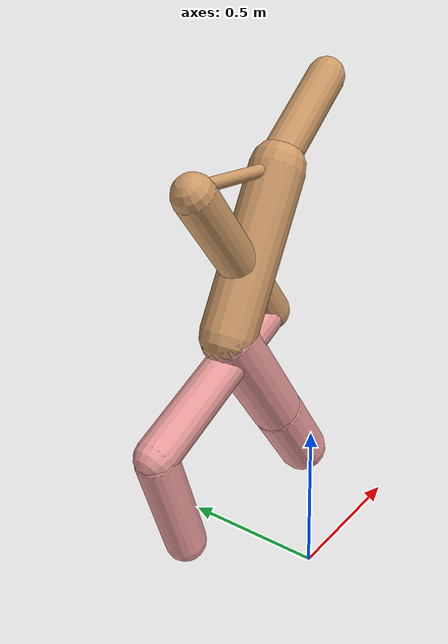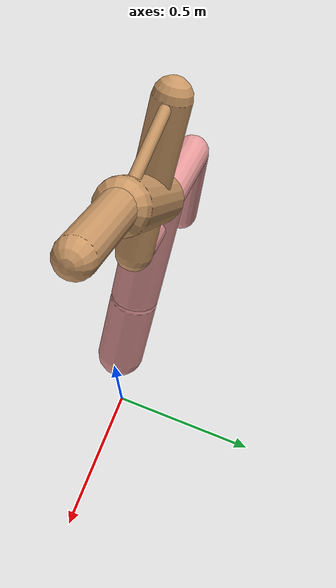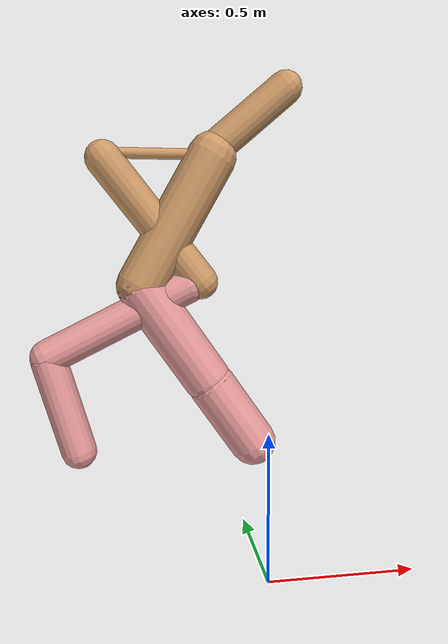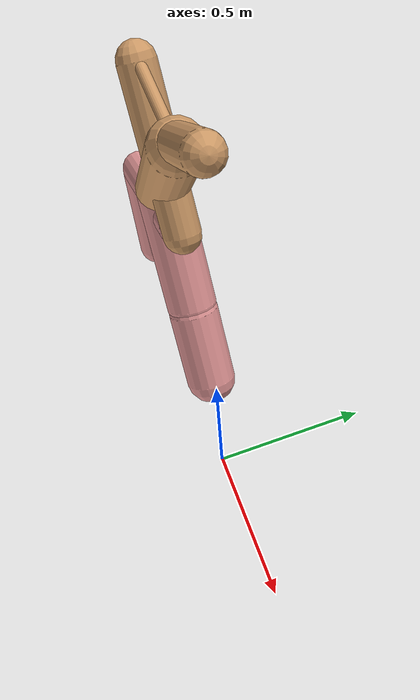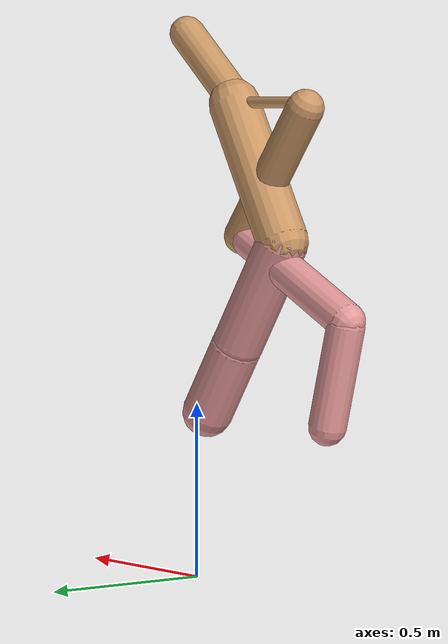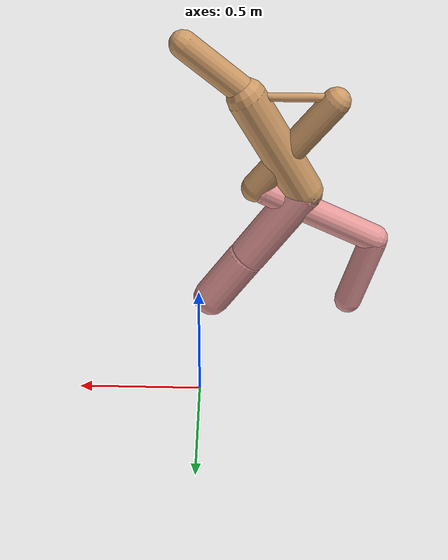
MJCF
<mujoco model="cheetah">
  <compiler angle="radian" coordinate="local" inertiafromgeom="true" settotalmass="14" />
  <default>
    <joint armature=".1" damping=".01" limited="true" solimplimit="0 .8 .03" solreflimit=".02 1" stiffness="8" />
    <geom conaffinity="0" condim="3" contype="1" friction="0.8 .1 .1" rgba="0.8 0.6 .4 1" solimp="0.0 0.8 0.01" solref="0.02 1" />
    <motor ctrllimited="true" ctrlrange="-1 1" />
  </default>
  <size nstack="300000" nuser_geom="1" />
  <option gravity="0 0 -9.81" timestep="0.01" />
  <worldbody>
    <body name="torso" pos="0.0 0.0 1.3609182406020885">
      <joint armature="0" axis="1 0 0" damping="0" limited="false" name="ignorex" pos="0 0 0" stiffness="0" type="slide" />
      <joint armature="0" axis="0 0 1" damping="0" limited="false" name="ignorez" pos="0 0 0" stiffness="0" type="slide" />
      <joint armature="0" axis="0 1 0" damping="0" limited="false" name="ignorey" pos="0 0 0" stiffness="0" type="hinge" />
      <geom fromto="-0.5 0.0 0.0 -0.16939763306063516 0.0 0.0" name="torso" size="0.016308621823509038" type="capsule" />
      <geom axisangle="0 1 0 .87" name="head" pos="-0.06939763306063518 0.0 0.1" size="0.05042099103359498 0.15" type="capsule" />

      <body name="bthigh" pos="-.5 0 0">
        <joint axis="0 1 0" damping="6" name="bthigh" pos="0 0 0" range="-.52 1.05" stiffness="240" type="hinge" />
        <geom axisangle="0 1 0 -3.8" name="bthigh" pos="0.14951737261343748 0.0 -0.19437258439746874" size="0.0529306720943512 0.22621452956551089" type="capsule" />
        <body name="bshin" pos="0.259034745226875 0.0 -0.37874516879493747">
          <joint axis="0 1 0" damping="4.5" name="bshin" pos="0 0 0" range="-.785 .785" stiffness="180" type="hinge" />
          <geom axisangle="0 1 0 -2.03" name="bshin" pos="-0.21514532780792367 0.0 -0.10757266390396183" rgba="0.9 0.6 0.6 1" size="0.0529306720943512 0.23401503058501125" type="capsule" />
          <body name="bfoot" pos="-0.43029065561584734 0.0 -0.21514532780792367">
            <joint axis="0 1 0" damping="3" name="bfoot" pos="0 0 0" range="-.4 .785" stiffness="120" type="hinge" />
            <geom axisangle="0 1 0 -.27" name="bfoot" pos="0.04555630929316518 0.0 -0.14729873338123411" rgba="0.9 0.6 0.6 1" size="0.0529306720943512 0.14664941916660706" type="capsule" />
            <inertial mass="10" />
          </body>
        </body>
      </body>
      <body name="fthigh" pos="-0.16939763306063516 0.0 0.0">
        <joint axis="0 1 0" damping="4.5" name="fthigh" pos="0 0 0" range="-1.5 0.8" stiffness="180" type="hinge" />
        <geom axisangle="0 1 0 .52" name="fthigh" pos="-0.11301848380855196 0.0 -0.19374597224323192" size="0.07270375602504894 0.21837598240305164" type="capsule" />
        <body name="fshin" pos="-0.22603696761710393 0.0 -0.38749194448646385">
          <joint axis="0 1 0" damping="3" name="fshin" pos="0 0 0" range="-1.2 1.1" stiffness="120" type="hinge" />
          <geom axisangle="0 1 0 -.6" name="fshin" pos="0.10483912864323235 0.0 -0.14516187042909093" rgba="0.9 0.6 0.6 1" size="0.07270375602504894 0.17404401605055242" type="capsule" />
          <body name="ffoot" pos="0.2096782572864647 0.0 -0.29032374085818186">
            <joint axis="0 1 0" damping="1.5" name="ffoot" pos="0 0 0" range="-3.1 -0.3" stiffness="60" type="hinge" />
            <geom axisangle="0 1 0 -.6" name="ffoot" pos="0.06929879505278834 0.0 -0.10779812563767076" rgba="0.9 0.6 0.6 1" size="0.07270375602504894 0.1149347275805535" type="capsule" />
            <inertial mass="10" />
          </body>
        </body>
      </body>
    </body>
  </worldbody>
  <actuator>
    <motor gear="120" joint="bthigh" name="bthigh" />
    <motor gear="90" joint="bshin" name="bshin" />
    <motor gear="60" joint="bfoot" name="bfoot" />
    <motor gear="120" joint="fthigh" name="fthigh" />
    <motor gear="60" joint="fshin" name="fshin" />
    <motor gear="30" joint="ffoot" name="ffoot" />
  </actuator>
</mujoco>
